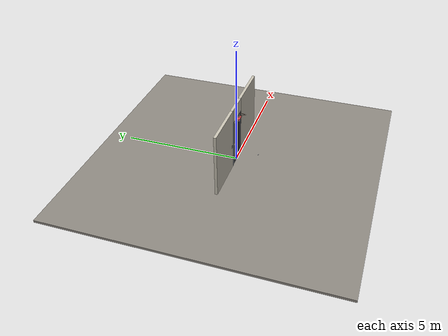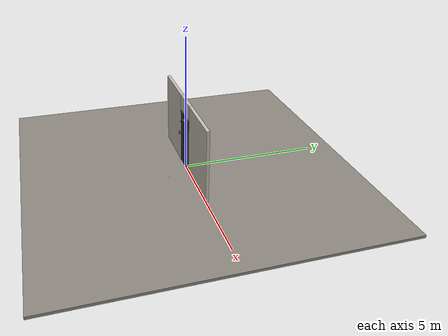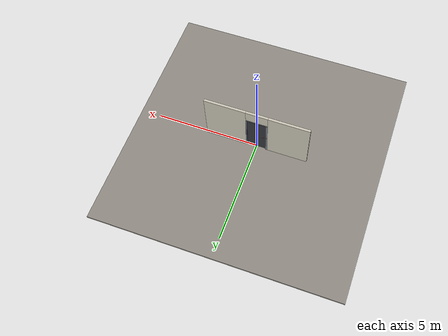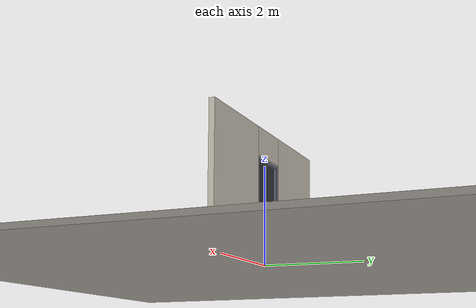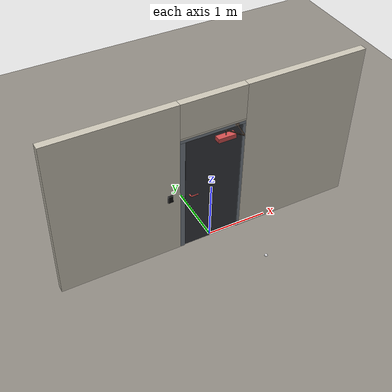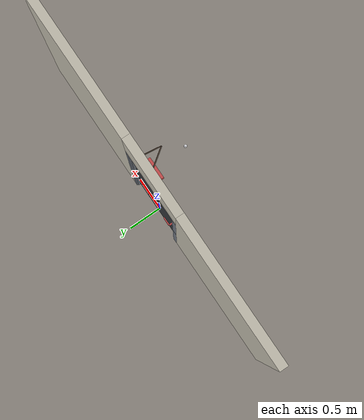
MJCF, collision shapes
<?xml version="1.0" ?>
<mujoco model="db0327_swing_single_full">
  <compiler angle="radian" meshdir="../../hardware" texturedir="../../textures" autolimits="true" inertiafromgeom="false"/>
  <option timestep="0.002" integrator="implicitfast" cone="elliptic" impratio="10" noslip_iterations="3">
    <flag multiccd="enable"/>
  </option>
  <size memory="16M"/>
  <default>
    <geom condim="4" solref="0.005 1" solimp="0.95 0.99 0.001"/>
    <joint solreflimit="0.005 1" solimplimit="0.95 0.99 0.001"/>
    <tendon solreflimit="0.005 1"/>
    <equality solref="0.002 1"/>
  </default>
  <visual>
    <headlight ambient="0.4 0.4 0.4" diffuse="0.7 0.7 0.7" specular="0.2 0.2 0.2"/>
    <quality shadowsize="4096"/>
    <map znear="0.01" zfar="60"/>
  </visual>
  <asset>
    <mesh name="closer_body_fdc4667657" file="closer_body_fdc4667657.obj"/>
    <mesh name="hinge_dcb8da44bf" file="hinge_dcb8da44bf.obj"/>
    <mesh name="hinge_jamb_8e208d7310" file="hinge_jamb_8e208d7310.obj"/>
    <mesh name="lever_9f02b544cf" file="lever_9f02b544cf.obj"/>
    <material name="mat_floor" rgba="0.55 0.53 0.5 1" specular="0.2" shininess="0.15" reflectance="0"/>
    <material name="mat_wall" rgba="0.78 0.76 0.7 1" specular="0.2" shininess="0.1" reflectance="0"/>
    <material name="mat_leaf" rgba="0.2 0.21 0.23 1" specular="0.2" shininess="0.58" reflectance="0"/>
    <material name="mat_hinge" rgba="0.65 0.66 0.68 1" specular="0.74" shininess="0.5" reflectance="0.36"/>
    <material name="mat_op_nickel_satin" rgba="0.72 0.7 0.66 1" specular="0.8" shininess="0.65" reflectance="0.4"/>
    <material name="mat_trim" rgba="0.85 0.66 0.3 1" specular="0.8" shininess="0.75" reflectance="0.4"/>
    <material name="mat_bolt" rgba="0.85 0.66 0.3 1" specular="0.8" shininess="0.75" reflectance="0.4"/>
    <material name="mat_frame" rgba="0.45 0.48 0.52 1" specular="0.32" shininess="0.6" reflectance="0.08"/>
    <material name="mat_closer" rgba="0.22 0.17 0.13 1" specular="0.8" shininess="0.6" reflectance="0.4"/>
    <material name="mat_wallreader" rgba="0.05 0.05 0.05 1" specular="0.38" shininess="0.3" reflectance="0.12"/>
    <material name="mat_stop" rgba="0.9 0.9 0.92 1" specular="0.8" shininess="0.9" reflectance="0.4"/>
    <texture name="skybox" type="skybox" builtin="gradient" rgb1="0.6 0.7 0.85" rgb2="0.9 0.92 0.95" width="256" height="256"/>
  </asset>
  <worldbody>
    <light name="sun" pos="1.5 -2.5 4" dir="-0.3 0.5 -0.8" directional="true" diffuse="0.8 0.8 0.8" specular="0.3 0.3 0.3" castshadow="true"/>
    <light name="fill" pos="-1.5 2.5 3" dir="0.3 -0.5 -0.7" directional="true" diffuse="0.35 0.35 0.4" castshadow="false"/>
    <camera name="robot_view" pos="0 -2.520188 1.734312" xyaxes="1 0 0 0 0.26963 0.962964" fovy="52"/>
    <camera name="far_view" pos="0 2.564187 1.734312" xyaxes="-1 0 0 0 -0.26963 0.962964" fovy="52"/>
    <camera name="iso" pos="-1.932062 -2.113438 2.141063" xyaxes="0.741536 -0.670913 0 0.242917 0.268487 0.932151" fovy="46"/>
    <camera name="detail_handle" pos="-0.106 -0.8835 1.32" xyaxes="0.97561 0.219512 0 -0.070934 0.315262 0.94635" fovy="38"/>
    <geom name="floor" type="box" size="6 6 0.05" pos="0 0 -0.05" material="mat_floor" group="0" contype="1" conaffinity="1" friction="0.8 0.005 0.0001" density="2400"/>
    <geom name="wall_left" type="box" size="0.9795 0.0575 1.35" pos="-1.5205 0.022 1.35" material="mat_wall" group="0" contype="1" conaffinity="1" friction="0.6 0.005 0.0001" density="800"/>
    <geom name="wall_right" type="box" size="0.9945 0.0575 1.35" pos="1.5055 0.022 1.35" material="mat_wall" group="0" contype="1" conaffinity="1" friction="0.6 0.005 0.0001" density="800"/>
    <geom name="wall_header" type="box" size="0.526 0.0575 0.2875" pos="-0.015 0.022 2.4125" material="mat_wall" group="0" contype="1" conaffinity="1" friction="0.6 0.005 0.0001" density="800"/>
    <geom name="hinge_0_jamb" type="mesh" mesh="hinge_jamb_8e208d7310" pos="0.458 -0.0355 0.259" quat="0 0 1 0" material="mat_hinge" group="1" contype="0" conaffinity="0" density="7850"/>
    <geom name="hinge_1_jamb" type="mesh" mesh="hinge_jamb_8e208d7310" pos="0.458 -0.0355 1.025" quat="0 0 1 0" material="mat_hinge" group="1" contype="0" conaffinity="0" density="7850"/>
    <geom name="hinge_2_jamb" type="mesh" mesh="hinge_jamb_8e208d7310" pos="0.458 -0.0355 1.861" quat="0 0 1 0" material="mat_hinge" group="1" contype="0" conaffinity="0" density="7850"/>
    <geom name="jamb_hinge" type="box" size="0.025 0.0575 1.0225" pos="0.486 0.022 1.0225" material="mat_frame" group="0" contype="1" conaffinity="1" friction="0.6 0.005 0.0001" density="300"/>
    <geom name="strike_1040_wall_n" type="box" size="0.04 0.035 0.0183" pos="-0.501 0.0445 1.04" material="mat_frame" group="0" contype="1" conaffinity="1" friction="0.6 0.005 0.0001" density="300"/>
    <geom name="strike_1040_wall_p" type="box" size="0.04 0.008 0.0183" pos="-0.501 -0.0175 1.04" material="mat_frame" group="0" contype="1" conaffinity="1" friction="0.6 0.005 0.0001" density="300"/>
    <geom name="strike_1040_ramp" type="box" size="0.04 0.018028 0.0183" pos="-0.504282 -0.018312 1.04" quat="0.957092 0 0 -0.289784" material="mat_frame" group="0" contype="1" conaffinity="1" friction="0.12 0.005 0.0001" density="300"/>
    <geom name="strike_1040_back" type="box" size="0.0285 0.0095 0.0183" pos="-0.5125 0 1.04" material="mat_frame" group="0" contype="1" conaffinity="1" friction="0.6 0.005 0.0001" density="300"/>
    <geom name="jamb_strike_0" type="box" size="0.04 0.0575 0.51085" pos="-0.501 0.022 0.51085" material="mat_frame" group="0" contype="1" conaffinity="1" friction="0.6 0.005 0.0001" density="300"/>
    <geom name="jamb_strike_1" type="box" size="0.04 0.0575 0.49335" pos="-0.501 0.022 1.55165" material="mat_frame" group="0" contype="1" conaffinity="1" friction="0.6 0.005 0.0001" density="300"/>
    <geom name="jamb_head" type="box" size="0.526 0.0575 0.025" pos="-0.015 0.022 2.07" material="mat_frame" group="0" contype="1" conaffinity="1" friction="0.6 0.005 0.0001" density="300"/>
    <geom name="head_stud" type="box" size="0.526 0.0575 0.015" pos="-0.015 0.022 2.11" material="mat_wall" group="0" contype="1" conaffinity="1" friction="0.6 0.005 0.0001" density="500"/>
    <geom name="stop_hinge" type="box" size="0.0055 0.016 1.0225" pos="0.4555 0.045 1.0225" material="mat_frame" group="0" contype="1" conaffinity="1" friction="0.6 0.005 0.0001" density="300"/>
    <geom name="stop_strike" type="box" size="0.0055 0.016 1.0225" pos="-0.4555 0.045 1.0225" material="mat_frame" group="0" contype="1" conaffinity="1" friction="0.6 0.005 0.0001" density="300"/>
    <geom name="stop_head" type="box" size="0.461 0.016 0.0055" pos="0 0.045 2.0395" material="mat_frame" group="0" contype="1" conaffinity="1" friction="0.6 0.005 0.0001" density="300"/>
    <geom name="closer_bracket" type="box" size="0.03 0.012 0.014" pos="0.361 -0.0475 2.075" material="mat_closer" group="1" contype="0" conaffinity="0" density="2700"/>
    <geom name="wall_reader" type="box" size="0.04 0.015 0.06" pos="-0.711 -0.0505 1.1" material="mat_wallreader" group="0" contype="1" conaffinity="1" friction="0.6 0.005 0.0001" density="1000"/>
    <geom name="floor_stop_dome" type="sphere" size="0.025" pos="0.545635 -0.807701 0" material="mat_stop" group="0" contype="1" conaffinity="1" friction="0.6 0.005 0.0001" density="7000"/>
    <site name="approach_point" pos="0 -1.5 0" quat="1 0 0 0" size="0.05" rgba="0.2 0.9 0.2 0.5" group="4"/>
    <site name="goal_point" pos="0 1.5 0" quat="1 0 0 0" size="0.05" rgba="0.2 0.9 0.2 0.5" group="4"/>
    <site name="door_plane_center" pos="0 0 1.0225" quat="1 0 0 0" size="0.02" rgba="0.2 0.9 0.2 0.5" group="4"/>
    <body name="leaf" pos="0.461 0 0">
      <inertial pos="-0.433061 -0.01162 1.160548" mass="90.745844" quat="0.514197 -0.512202 -0.476218 -0.496454" diaginertia="5.859344444 36.639538956 42.336628085"/>
      <joint name="leaf_hinge" type="hinge" axis="0 0 1" pos="-0.003 -0.0355 0" limited="true" range="0 1.658063" damping="12.25611" frictionloss="1.446023" stiffness="17.354255" springref="-2.494489" armature="0.02"/>
      <geom name="leaf_slab" type="box" size="0.457 0.0285 1.016" pos="-0.46 0 1.025" material="mat_leaf" group="0" contype="1" conaffinity="1" friction="0.4 0.005 0.0001" density="1"/>
      <geom name="hinge_0" type="mesh" mesh="hinge_dcb8da44bf" pos="-0.003 -0.0355 0.259" quat="0 0 1 0" material="mat_hinge" group="1" contype="0" conaffinity="0" density="7850"/>
      <geom name="hinge_1" type="mesh" mesh="hinge_dcb8da44bf" pos="-0.003 -0.0355 1.025" quat="0 0 1 0" material="mat_hinge" group="1" contype="0" conaffinity="0" density="7850"/>
      <geom name="hinge_2" type="mesh" mesh="hinge_dcb8da44bf" pos="-0.003 -0.0355 1.861" quat="0 0 1 0" material="mat_hinge" group="1" contype="0" conaffinity="0" density="7850"/>
      <geom name="leaf_latch_bolt_faceplate" type="box" size="0.0006 0.014 0.0283" pos="-0.9164 0 1.04" material="mat_bolt" group="1" contype="0" conaffinity="0" density="8500"/>
      <geom name="closer_body" type="mesh" mesh="closer_body_fdc4667657" pos="-0.3 -0.0285 1.952" quat="0 0 -0.707107 0.707107" material="mat_closer" group="1" contype="0" conaffinity="0" density="2000"/>
      <geom name="closer_body_col" type="box" size="0.145 0.05 0.035" pos="-0.3 -0.0785 1.952" material="mat_closer" group="3" contype="1" conaffinity="1" rgba="0.8 0.3 0.3 0.25" friction="0.6 0.005 0.0001" density="2000"/>
      <geom name="closer_pinion_shaft" type="cylinder" size="0.008 0.0615" pos="-0.3 -0.0785 2.0135" material="mat_closer" group="1" contype="0" conaffinity="0" density="2700"/>
      <site name="leaf_edge_mid" pos="-0.917 0 1.016" quat="1 0 0 0" size="0.02" rgba="0.2 0.9 0.2 0.5" group="4"/>
      <body name="leaf_handle" pos="-0.847 0 1.04">
        <inertial pos="0.028211 0 0" mass="0.989728" quat="0 0.707107 0.707107 0" diaginertia="0.001781549 0.004346844 0.005949982"/>
        <joint name="leaf_handle_hinge" type="hinge" axis="0 1 0" limited="true" range="0 0.96" damping="0.245626" frictionloss="0.048" stiffness="1.2" springref="-0.458333" armature="0.01"/>
        <geom name="leaf_handle_spindle" type="cylinder" size="0.006 0.0365" pos="0 0 0" quat="0.707107 -0.707107 0 0" material="mat_op_nickel_satin" group="1" contype="0" conaffinity="0" density="7850"/>
        <geom name="leaf_handle_lever_n" type="mesh" mesh="lever_9f02b544cf" pos="0 -0.0285 0" quat="0 0 -0.707107 0.707107" material="mat_op_nickel_satin" group="1" contype="0" conaffinity="0" density="3000"/>
        <geom name="leaf_handle_lever_col_n" type="capsule" size="0.0095 0.053" pos="0.0625 -0.0835 0" quat="0.707107 0 0.707107 0" material="mat_op_nickel_satin" group="3" contype="1" conaffinity="1" rgba="0.8 0.3 0.3 0.25" friction="0.7 0.01 0.0001" density="3000"/>
        <geom name="leaf_handle_hub_col_n" type="cylinder" size="0.012 0.022" pos="0 -0.0585 0" quat="0.707107 -0.707107 0 0" material="mat_op_nickel_satin" group="3" contype="1" conaffinity="1" rgba="0.8 0.3 0.3 0.25" friction="0.6 0.005 0.0001" density="3000"/>
        <geom name="leaf_handle_lever_p" type="mesh" mesh="lever_9f02b544cf" pos="0 0.0285 0" quat="0 0 0.707107 0.707107" material="mat_op_nickel_satin" group="1" contype="0" conaffinity="0" density="3000"/>
        <geom name="leaf_handle_lever_col_p" type="capsule" size="0.0095 0.053" pos="0.0625 0.0835 0" quat="0.707107 0 0.707107 0" material="mat_op_nickel_satin" group="3" contype="1" conaffinity="1" rgba="0.8 0.3 0.3 0.25" friction="0.7 0.01 0.0001" density="3000"/>
        <geom name="leaf_handle_hub_col_p" type="cylinder" size="0.012 0.022" pos="0 0.0585 0" quat="0.707107 -0.707107 0 0" material="mat_op_nickel_satin" group="3" contype="1" conaffinity="1" rgba="0.8 0.3 0.3 0.25" friction="0.6 0.005 0.0001" density="3000"/>
        <site name="leaf_handle_grip_n" pos="0.1 -0.0835 0" quat="1 0 0 0" size="0.012" rgba="0.2 0.9 0.2 0.5" group="4"/>
        <site name="leaf_handle_grip_p" pos="0.1 0.0835 0" quat="1 0 0 0" size="0.012" rgba="0.2 0.9 0.2 0.5" group="4"/>
      </body>
      <body name="leaf_latch_bolt" pos="-0.917 0 1.04">
        <inertial pos="0.0055 0 0" mass="0.074627" quat="0.92388 0.382683 0 0" diaginertia="0.000002271 0.000013255 0.000013255"/>
        <joint name="leaf_latch_bolt_slide" type="slide" axis="1 0 0" limited="true" range="0 0.019" damping="2" frictionloss="0.3" stiffness="600" springref="-0.01" armature="0.1"/>
        <geom name="leaf_latch_bolt_capsule" type="capsule" size="0.008 0.0165" pos="0.0055 0 0" quat="0.707107 0 -0.707107 0" material="mat_bolt" group="0" contype="1" conaffinity="1" friction="0.2 0.005 0.0001" density="8500"/>
      </body>
      <body name="closer_arm_main" pos="-0.3 -0.0785 2.075" quat="0.890947 0 0 -0.454107">
        <inertial pos="0.14 0 0" mass="0.12096" quat="1 0 0 0" diaginertia="0.000003588 0.00079128 0.000792852"/>
        <joint name="closer_pinion" type="hinge" axis="0 0 1" limited="false" damping="0.01" armature="0.002"/>
        <geom name="closer_arm_main_geom" type="box" size="0.14 0.008 0.005" pos="0.14 0 0" material="mat_closer" group="1" contype="0" conaffinity="0" density="2700"/>
        <body name="closer_arm_fore" pos="0.28 0 0" quat="0.373215 0 0 0.927745">
          <inertial pos="0.128088 0 0" mass="0.076531" quat="1 0 0 0" diaginertia="0.000001771 0.000437665 0.000438201"/>
          <joint name="closer_elbow" type="hinge" axis="0 0 1" limited="false" damping="0.01" armature="0.002"/>
          <geom name="closer_arm_fore_geom" type="box" size="0.1125 0.007 0.004" pos="0.1125 0 0" material="mat_closer" group="1" contype="0" conaffinity="0" density="2700"/>
          <geom name="closer_fore_neck" type="box" size="0.0175 0.003 0.003" pos="0.2425 0 0" material="mat_closer" group="1" contype="0" conaffinity="0" density="2700"/>
          <geom name="closer_fore_pivot" type="cylinder" size="0.005 0.012" pos="0.26 0 0" material="mat_closer" group="1" contype="0" conaffinity="0" density="2700"/>
        </body>
      </body>
    </body>
  </worldbody>
  <tendon>
    <fixed name="leaf_latch_bolt_coupling" limited="true" range="0 10">
      <joint joint="leaf_latch_bolt_slide" coef="1"/>
      <joint joint="leaf_handle_hinge" coef="-0.020879"/>
    </fixed>
  </tendon>
  <equality>
    <connect name="closer_arm_connect" body1="closer_arm_fore" body2="world" anchor="0.26 0 0" active="true"/>
  </equality>
  <contact>
    <exclude body1="closer_arm_main" body2="leaf"/>
    <exclude body1="closer_arm_fore" body2="leaf"/>
    <exclude body1="closer_arm_main" body2="closer_arm_fore"/>
  </contact>
  <sensor>
    <jointpos name="leaf_hinge_pos" joint="leaf_hinge"/>
    <jointvel name="leaf_hinge_vel" joint="leaf_hinge"/>
    <jointpos name="leaf_handle_hinge_pos" joint="leaf_handle_hinge"/>
    <jointvel name="leaf_handle_hinge_vel" joint="leaf_handle_hinge"/>
    <jointpos name="leaf_latch_bolt_slide_pos" joint="leaf_latch_bolt_slide"/>
    <jointvel name="leaf_latch_bolt_slide_vel" joint="leaf_latch_bolt_slide"/>
  </sensor>
</mujoco>
